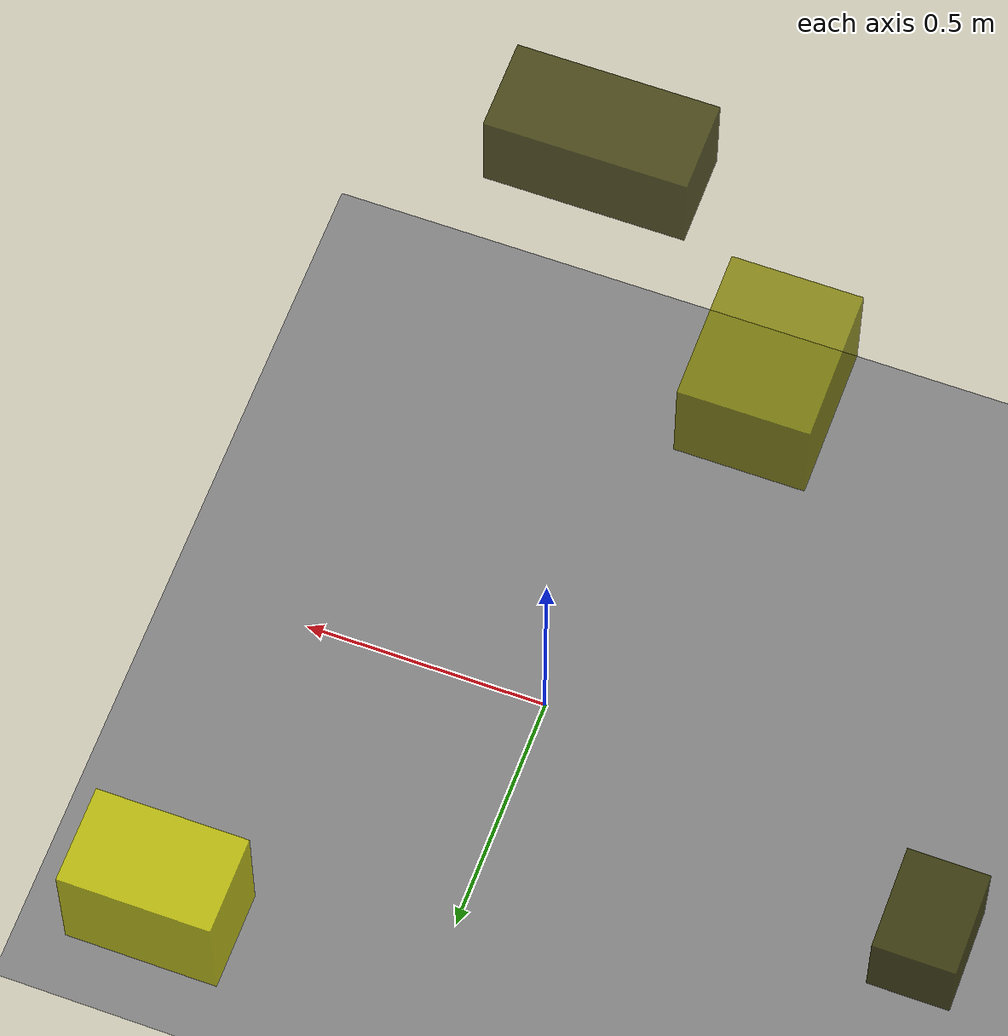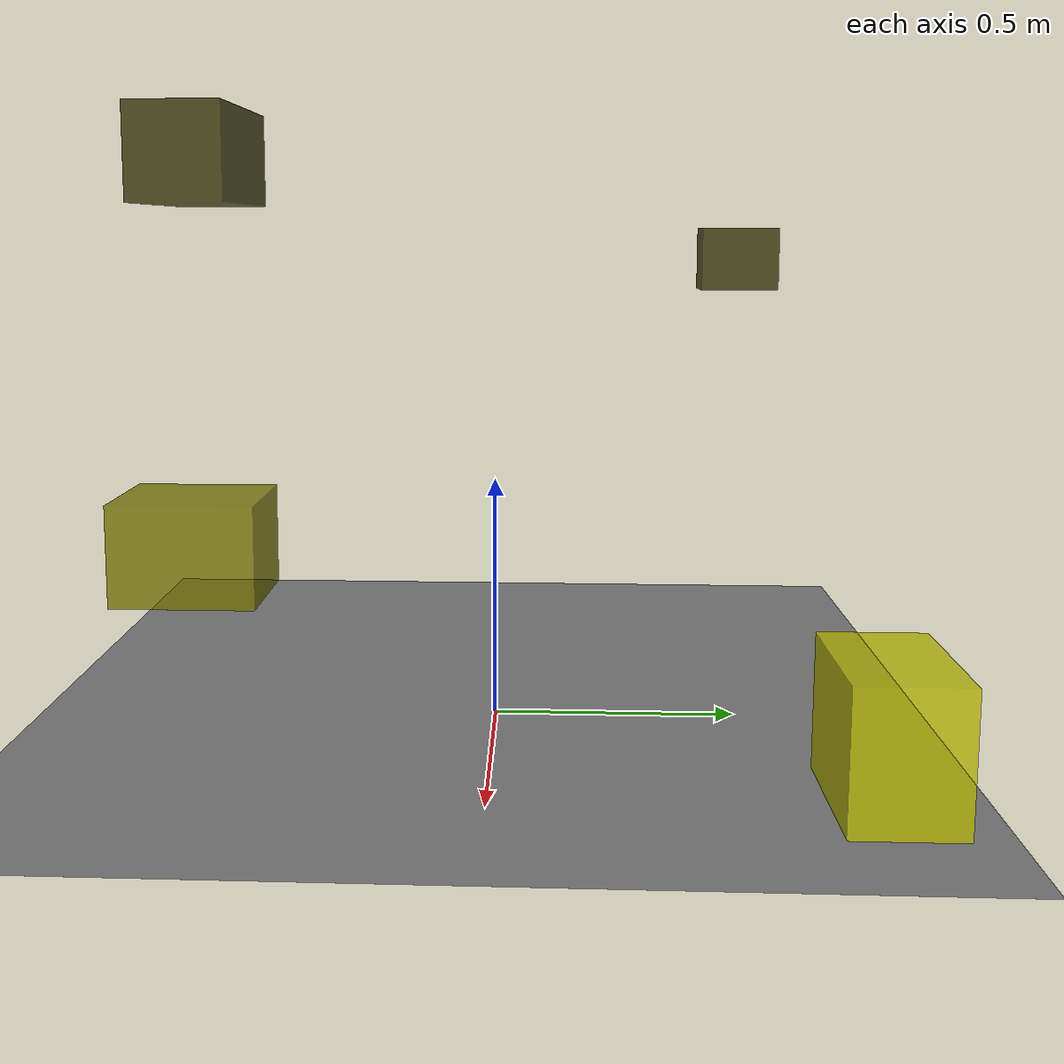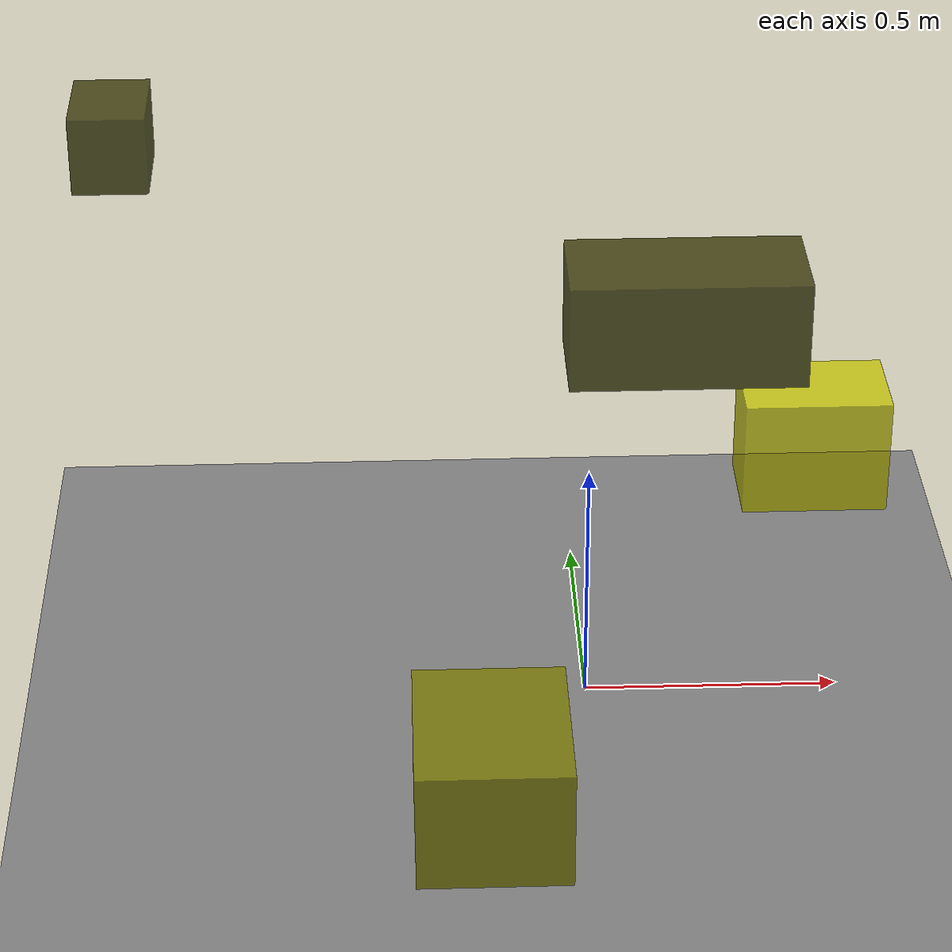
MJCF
<?xml version="1.0"?>
<mujoco model="obstacle_scene">
  <compiler angle="radian" coordinate="local"/>
  <option timestep="0.001" gravity="0 0 -9.81"/>

  <asset>
    <material name="obstacle_mat" rgba="0.8 0.8 0.0 0.8"/>
    <material name="ground_mat" rgba="0.5 0.5 0.5 1"/>
  </asset>

  <worldbody>
    <!-- Ground plane -->
    <geom name="ground" type="plane" size="3 3 0.1" material="ground_mat"/>

    <!-- Obstacles -->
    <body name="obstacle_0" pos="0.109848 -0.578616 1.154430">
      <geom name="obs_0" type="box" size="0.195930 0.090852 0.092581" rgba="0.2 0.2 0.0 0.8"/>
    </body>
    <body name="obstacle_1" pos="-0.212841 -0.691971 0.305778">
      <geom name="obs_1" type="box" size="0.136528 0.163089 0.115168" rgba="0.5 0.5 0.0 0.8"/>
    </body>
    <body name="obstacle_2" pos="0.533770 0.693381 0.164321">
      <geom name="obs_2" type="box" size="0.155921 0.100368 0.129049" rgba="0.8 0.8 0.0 0.8"/>
    </body>
    <body name="obstacle_3" pos="-0.925033 0.610822 0.939593">
      <geom name="obs_3" type="box" size="0.076478 0.098186 0.080759" rgba="0.2 0.2 0.0 0.8"/>
    </body>
  </worldbody>
</mujoco>
